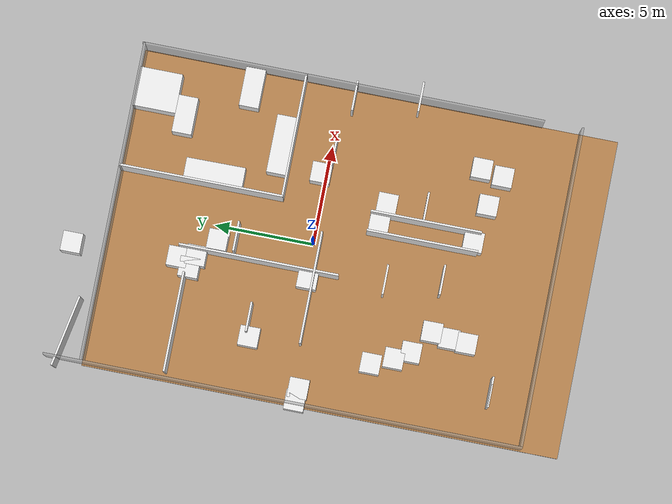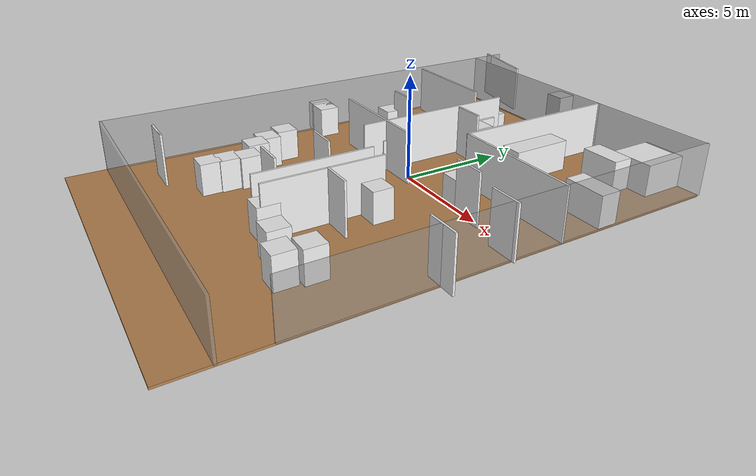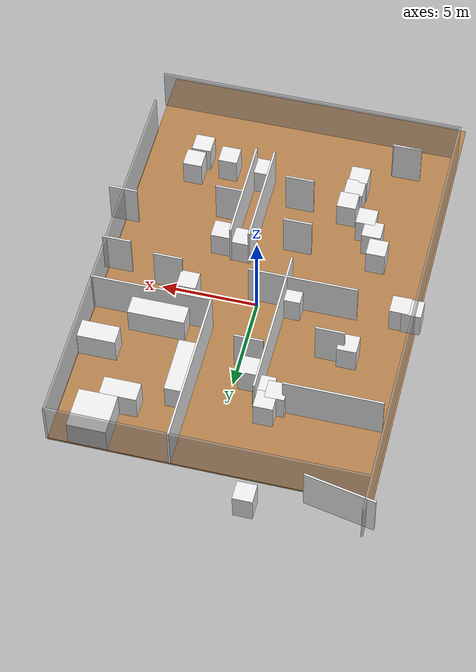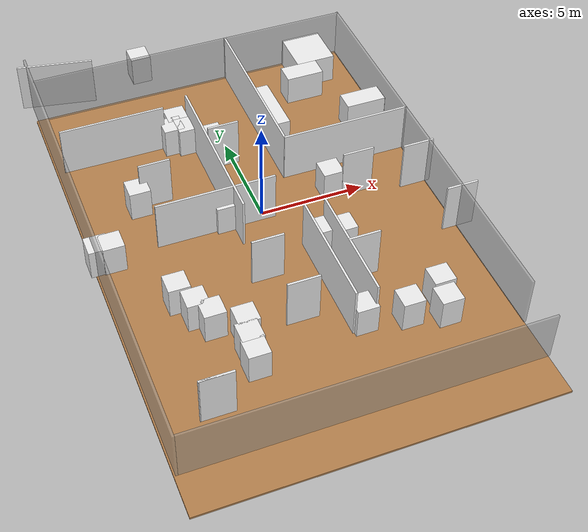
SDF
<sdf version="1.7">
 <world name="default">
  <light name="sun" type="directional">
   <pose>0 0 10 0 -0 0</pose>
   <diffuse>0.8 0.8 0.8 1</diffuse>
   <specular>0.2 0.2 0.2 1</specular>
   <attenuation>
    <range>1000</range>
    <constant>0.9</constant>
    <linear>0.01</linear>
    <quadratic>0.001</quadratic>
   </attenuation>
   <direction>-0.5 0.1 -0.9</direction>
   <spot><inner_angle>0</inner_angle><outer_angle>0</outer_angle><falloff>0</falloff></spot>
  </light>
  <physics name="default_physics" default="0" type="ode">
   <real_time_update_rate>1000</real_time_update_rate>
   <max_step_size>0.001</max_step_size>
   <real_time_factor>1</real_time_factor>
   <ode>
    <solver>
     <type>quick</type>
     <iters>150</iters>
     <precon_iters>0</precon_iters>
     <sor>1.4</sor>
     <use_dynamic_moi_rescaling>1</use_dynamic_moi_rescaling>
    </solver>
    <constraints>
     <cfm>1e-05</cfm>
     <erp>0.2</erp>
     <contact_max_correcting_vel>2000</contact_max_correcting_vel>
     <contact_surface_layer>0.01</contact_surface_layer>
    </constraints>
   </ode>
  </physics>
  <model name="box_1">
   <pose>0.05 -12.05 1.25 0 -0 0</pose>
   <static>1</static>
   <link name="link">
    <collision name="collision"><geometry><box><size>16.1 0.1 2.5</size></box></geometry></collision>
    <visual name="visual">
     <geometry><box><size>16.1 0.1 2.5</size></box></geometry>
     <material>
      <script><name>Gazebo/GreyTransparent</name><uri>file://media/materials/scripts/gazebo.material</uri></script>
     </material>
    </visual>
   </link>
  </model>
  <model name="box_2">
   <pose>8.05 0.05 1.25 0 -0 0</pose>
   <static>1</static>
   <link name="link">
    <collision name="collision"><geometry><box><size>0.1 20.3408 2.5</size></box></geometry></collision>
    <visual name="visual">
     <geometry><box><size>0.1 20.3408 2.5</size></box></geometry>
     <material>
      <script><name>Gazebo/GreyTransparent</name><uri>file://media/materials/scripts/gazebo.material</uri></script>
     </material>
    </visual>
   </link>
  </model>
  <model name="box_3">
   <pose>0.01623 10.1284 1.25 0 -0 0</pose>
   <static>1</static>
   <link name="link">
    <collision name="collision"><geometry><box><size>16.1 0.1 2.5</size></box></geometry></collision>
    <visual name="visual">
     <geometry><box><size>16.1 0.1 2.5</size></box></geometry>
     <material>
      <script><name>Gazebo/GreyTransparent</name><uri>file://media/materials/scripts/gazebo.material</uri></script>
     </material>
    </visual>
   </link>
  </model>
  <model name="box_4">
   <pose>-8.05 -0.05 1.25 0 -0 0</pose>
   <static>1</static>
   <link name="link">
    <collision name="collision"><geometry><box><size>0.1 24.1 2.5</size></box></geometry></collision>
    <visual name="visual">
     <geometry><box><size>0.1 24.1 2.5</size></box></geometry>
     <material>
      <script><name>Gazebo/GreyTransparent</name><uri>file://media/materials/scripts/gazebo.material</uri></script>
     </material>
    </visual>
   </link>
  </model>
  <model name="box_5">
   <pose>-0.073535 -1.90385 -0.05 0 -0 0</pose>
   <static>1</static>
   <link name="link">
    <collision name="collision"><geometry><box><size>16.2 24.2 0.1</size></box></geometry></collision>
    <visual name="visual">
     <geometry><box><size>16.2 24.2 0.1</size></box></geometry>
     <material>
      <script><name>Gazebo/WoodFloor</name><uri>file://media/materials/scripts/gazebo.material</uri></script>
     </material>
    </visual>
   </link>
  </model>
  <gravity>0 0 -9.8066</gravity>
  <magnetic_field>6e-06 2.3e-05 -4.2e-05</magnetic_field>
  <atmosphere type="adiabatic"/>
  <scene><ambient>0.4 0.4 0.4 1</ambient><background>0.7 0.7 0.7 1</background><shadows>1</shadows></scene>
  <spherical_coordinates>
   <surface_model>EARTH_WGS84</surface_model>
   <latitude_deg>0</latitude_deg>
   <longitude_deg>0</longitude_deg>
   <elevation>0</elevation>
   <heading_deg>0</heading_deg>
  </spherical_coordinates>
  <model name="box_8_clone">
   <pose>7.48667 -0.628309 1.25 0 -0 0</pose>
   <static>1</static>
   <link name="link">
    <collision name="collision"><geometry><box><size>1.5 0.1 2.5</size></box></geometry></collision>
    <visual name="visual">
     <geometry><box><size>1.5 0.1 2.5</size></box></geometry>
     <material>
      <script><name>Gazebo/White</name><uri>file://media/materials/scripts/gazebo.material</uri></script>
     </material>
    </visual>
   </link>
  </model>
  <model name="box_9_clone_clone_0">
   <pose>-3.46298 -8.44795 0.75 0 -0 0</pose>
   <static>1</static>
   <link name="link">
    <collision name="collision"><geometry><box><size>1 1 1.5</size></box></geometry></collision>
    <visual name="visual">
     <geometry><box><size>1 1 1.5</size></box></geometry>
     <material>
      <script><name>Gazebo/White</name><uri>file://media/materials/scripts/gazebo.material</uri></script>
     </material>
    </visual>
   </link>
  </model>
  <model name="box_9_clone_clone_1">
   <pose>-3.40186 -7.56359 0.75 0 -0 0</pose>
   <static>1</static>
   <link name="link">
    <collision name="collision"><geometry><box><size>1 1 1.5</size></box></geometry></collision>
    <visual name="visual">
     <geometry><box><size>1 1 1.5</size></box></geometry>
     <material>
      <script><name>Gazebo/White</name><uri>file://media/materials/scripts/gazebo.material</uri></script>
     </material>
    </visual>
   </link>
  </model>
  <model name="box_9_clone_clone_2">
   <pose>-3.23885 -6.64819 0.75 0 -0 0</pose>
   <static>1</static>
   <link name="link">
    <collision name="collision"><geometry><box><size>1 1 1.5</size></box></geometry></collision>
    <visual name="visual">
     <geometry><box><size>1 1 1.5</size></box></geometry>
     <material>
      <script><name>Gazebo/White</name><uri>file://media/materials/scripts/gazebo.material</uri></script>
     </material>
    </visual>
   </link>
  </model>
  <model name="box_9_clone_clone_3">
   <pose>5.04068 -8.64867 0.75 0 -0 0</pose>
   <static>1</static>
   <link name="link">
    <collision name="collision"><geometry><box><size>1 1 1.5</size></box></geometry></collision>
    <visual name="visual">
     <geometry><box><size>1 1 1.5</size></box></geometry>
     <material>
      <script><name>Gazebo/White</name><uri>file://media/materials/scripts/gazebo.material</uri></script>
     </material>
    </visual>
   </link>
  </model>
  <model name="box_9_clone_clone_4">
   <pose>5.24363 -7.53941 0.75 0 -0 0</pose>
   <static>1</static>
   <link name="link">
    <collision name="collision"><geometry><box><size>1 1 1.5</size></box></geometry></collision>
    <visual name="visual">
     <geometry><box><size>1 1 1.5</size></box></geometry>
     <material>
      <script><name>Gazebo/White</name><uri>file://media/materials/scripts/gazebo.material</uri></script>
     </material>
    </visual>
   </link>
  </model>
  <model name="box_9_clone_clone_7">
   <pose>-2.40815 5.82285 0.75 0 -0 0</pose>
   <static>1</static>
   <link name="link">
    <collision name="collision"><geometry><box><size>1 1 1.5</size></box></geometry></collision>
    <visual name="visual">
     <geometry><box><size>1 1 1.5</size></box></geometry>
     <material>
      <script><name>Gazebo/White</name><uri>file://media/materials/scripts/gazebo.material</uri></script>
     </material>
    </visual>
   </link>
  </model>
  <model name="box_9_clone_clone_8">
   <pose>-2 6.49358 0.75 0 -0 0</pose>
   <static>1</static>
   <link name="link">
    <collision name="collision"><geometry><box><size>1 0.999999 1.5</size></box></geometry></collision>
    <visual name="visual">
     <geometry><box><size>1 0.999999 1.5</size></box></geometry>
     <material>
      <script><name>Gazebo/White</name><uri>file://media/materials/scripts/gazebo.material</uri></script>
     </material>
    </visual>
   </link>
  </model>
  <model name="box_8_clone_clone_13_clone_clone_clone_clone_0">
   <pose>8.06241 -3.86612 1.25 0 -0 0</pose>
   <static>1</static>
   <link name="link">
    <collision name="collision"><geometry><box><size>1.5 0.1 2.5</size></box></geometry></collision>
    <visual name="visual">
     <geometry><box><size>1.5 0.1 2.5</size></box></geometry>
     <material>
      <script><name>Gazebo/White</name><uri>file://media/materials/scripts/gazebo.material</uri></script>
     </material>
    </visual>
   </link>
  </model>
  <model name="box_8_clone_clone_11_clone">
   <pose>-1.1954 -3.87817 1.25 0 -0 0</pose>
   <static>1</static>
   <link name="link">
    <collision name="collision"><geometry><box><size>1.5 0.1 2.5</size></box></geometry></collision>
    <visual name="visual">
     <geometry><box><size>1.5 0.1 2.5</size></box></geometry>
     <material>
      <script><name>Gazebo/White</name><uri>file://media/materials/scripts/gazebo.material</uri></script>
     </material>
    </visual>
   </link>
  </model>
  <model name="box_8_clone_clone_4_clone_2">
   <pose>-4.30694 2.39293 1.25 0 -0 0</pose>
   <static>1</static>
   <link name="link">
    <collision name="collision"><geometry><box><size>1.5 0.1 2.5</size></box></geometry></collision>
    <visual name="visual">
     <geometry><box><size>1.5 0.1 2.5</size></box></geometry>
     <material>
      <script><name>Gazebo/White</name><uri>file://media/materials/scripts/gazebo.material</uri></script>
     </material>
    </visual>
   </link>
  </model>
  <model name="box_9_clone_clone_7_clone">
   <pose>-5.21616 2.23106 0.75 0 -0 0</pose>
   <static>1</static>
   <link name="link">
    <collision name="collision"><geometry><box><size>1 1 1.5</size></box></geometry></collision>
    <visual name="visual">
     <geometry><box><size>1 1 1.5</size></box></geometry>
     <material>
      <script><name>Gazebo/White</name><uri>file://media/materials/scripts/gazebo.material</uri></script>
     </material>
    </visual>
   </link>
  </model>
  <model name="box_9_clone_clone_7_clone_clone">
   <pose>-7.89766 -0.627489 0.75 0 -0 0</pose>
   <static>1</static>
   <link name="link">
    <collision name="collision"><geometry><box><size>1 1 1.5</size></box></geometry></collision>
    <visual name="visual">
     <geometry><box><size>1 1 1.5</size></box></geometry>
     <material>
      <script><name>Gazebo/White</name><uri>file://media/materials/scripts/gazebo.material</uri></script>
     </material>
    </visual>
   </link>
  </model>
  <model name="box_9_clone_clone_7_clone_clone_3">
   <pose>-5.3619 -3.95424 0.75 0 -0 0</pose>
   <static>1</static>
   <link name="link">
    <collision name="collision"><geometry><box><size>1 0.999999 1.5</size></box></geometry></collision>
    <visual name="visual">
     <geometry><box><size>1 0.999999 1.5</size></box></geometry>
     <material>
      <script><name>Gazebo/White</name><uri>file://media/materials/scripts/gazebo.material</uri></script>
     </material>
    </visual>
   </link>
  </model>
  <model name="box_9_clone_clone_7_clone_clone_4">
   <pose>-4.89443 -5.04481 0.75 0 -0 0</pose>
   <static>1</static>
   <link name="link">
    <collision name="collision"><geometry><box><size>1 1 1.5</size></box></geometry></collision>
    <visual name="visual">
     <geometry><box><size>1 1 1.5</size></box></geometry>
     <material>
      <script><name>Gazebo/White</name><uri>file://media/materials/scripts/gazebo.material</uri></script>
     </material>
    </visual>
   </link>
  </model>
  <model name="box_9_clone_clone_7_clone_clone_5">
   <pose>-4.42171 -5.82067 0.75 0 -0 0</pose>
   <static>1</static>
   <link name="link">
    <collision name="collision"><geometry><box><size>1 1 1.5</size></box></geometry></collision>
    <visual name="visual">
     <geometry><box><size>1 1 1.5</size></box></geometry>
     <material>
      <script><name>Gazebo/White</name><uri>file://media/materials/scripts/gazebo.material</uri></script>
     </material>
    </visual>
   </link>
  </model>
  <model name="box_9_clone_clone_5_clone_2_clone_0">
   <pose>5.99238 9.0872 0.75 0 -0 0</pose>
   <static>1</static>
   <link name="link">
    <collision name="collision"><geometry><box><size>1.98299 2.16359 1.5</size></box></geometry></collision>
    <visual name="visual">
     <geometry><box><size>1.98299 2.16359 1.5</size></box></geometry>
     <material>
      <script><name>Gazebo/White</name><uri>file://media/materials/scripts/gazebo.material</uri></script>
     </material>
    </visual>
   </link>
  </model>
  <model name="box_9_clone_clone_5_clone_2_clone_0_clone_0">
   <pose>3.49636 -8.18539 0.75 0 -0 0</pose>
   <static>1</static>
   <link name="link">
    <collision name="collision"><geometry><box><size>1 1 1.5</size></box></geometry></collision>
    <visual name="visual">
     <geometry><box><size>1 1 1.5</size></box></geometry>
     <material>
      <script><name>Gazebo/White</name><uri>file://media/materials/scripts/gazebo.material</uri></script>
     </material>
    </visual>
   </link>
  </model>
  <model name="box_9_clone_clone_7_clone_clone_clone">
   <pose>-7.27075 -0.673379 0.75 0 -0 0</pose>
   <static>1</static>
   <link name="link">
    <collision name="collision"><geometry><box><size>1 1 1.5</size></box></geometry></collision>
    <visual name="visual">
     <geometry><box><size>1 1 1.5</size></box></geometry>
     <material>
      <script><name>Gazebo/White</name><uri>file://media/materials/scripts/gazebo.material</uri></script>
     </material>
    </visual>
   </link>
  </model>
  <model name="box_9_clone_clone_7_clone_0">
   <pose>7.01794 4.4793 0.75 0 -0 0</pose>
   <static>1</static>
   <link name="link">
    <collision name="collision"><geometry><box><size>1.98047 1 1.5</size></box></geometry></collision>
    <visual name="visual">
     <geometry><box><size>1.98047 1 1.5</size></box></geometry>
     <material>
      <script><name>Gazebo/White</name><uri>file://media/materials/scripts/gazebo.material</uri></script>
     </material>
    </visual>
   </link>
  </model>
  <model name="box_8_clone_clone_3_clone_clone">
   <pose>-5.25901 5.98168 1.25 0 -0 0</pose>
   <static>1</static>
   <link name="link">
    <collision name="collision"><geometry><box><size>5.04273 0.1 2.5</size></box></geometry></collision>
    <visual name="visual">
     <geometry><box><size>5.04273 0.1 2.5</size></box></geometry>
     <material>
      <script><name>Gazebo/White</name><uri>file://media/materials/scripts/gazebo.material</uri></script>
     </material>
    </visual>
   </link>
  </model>
  <model name="box_9_clone_clone_9_clone">
   <pose>-2.30467 11.7929 0.75 0 -0 0</pose>
   <static>1</static>
   <link name="link">
    <collision name="collision"><geometry><box><size>1 1 1.5</size></box></geometry></collision>
    <visual name="visual">
     <geometry><box><size>1 1 1.5</size></box></geometry>
     <material>
      <script><name>Gazebo/White</name><uri>file://media/materials/scripts/gazebo.material</uri></script>
     </material>
    </visual>
   </link>
  </model>
  <model name="box_9_clone_clone_7_clone_1">
   <pose>-1.75575 5.59579 0.75 0 -0 0</pose>
   <static>1</static>
   <link name="link">
    <collision name="collision"><geometry><box><size>1 1 1.5</size></box></geometry></collision>
    <visual name="visual">
     <geometry><box><size>1 1 1.5</size></box></geometry>
     <material>
      <script><name>Gazebo/White</name><uri>file://media/materials/scripts/gazebo.material</uri></script>
     </material>
    </visual>
   </link>
  </model>
  <model name="box_6_clone_clone_3_clone_clone_clone">
   <pose>-1.43846 2.46186 1.25 0 -0 0</pose>
   <static>1</static>
   <link name="link">
    <collision name="collision"><geometry><box><size>0.1 8.05948 2.5</size></box></geometry></collision>
    <visual name="visual">
     <geometry><box><size>0.1 8.05948 2.5</size></box></geometry>
     <material>
      <script><name>Gazebo/White</name><uri>file://media/materials/scripts/gazebo.material</uri></script>
     </material>
    </visual>
   </link>
  </model>
  <model name="box_6_clone_clone_3_clone_clone_clone_clone_0">
   <pose>2.0182 -5.31678 1.25 0 -0 0</pose>
   <static>1</static>
   <link name="link">
    <collision name="collision"><geometry><box><size>0.1 5.60332 2.5</size></box></geometry></collision>
    <visual name="visual">
     <geometry><box><size>0.1 5.60332 2.5</size></box></geometry>
     <material>
      <script><name>Gazebo/White</name><uri>file://media/materials/scripts/gazebo.material</uri></script>
     </material>
    </visual>
   </link>
  </model>
  <model name="box_6_clone_clone_3_clone_clone_clone_clone_0_clone">
   <pose>1.04356 -5.29976 1.25 0 -0 0</pose>
   <static>1</static>
   <link name="link">
    <collision name="collision"><geometry><box><size>0.1 5.60332 2.5</size></box></geometry></collision>
    <visual name="visual">
     <geometry><box><size>0.1 5.60332 2.5</size></box></geometry>
     <material>
      <script><name>Gazebo/White</name><uri>file://media/materials/scripts/gazebo.material</uri></script>
     </material>
    </visual>
   </link>
  </model>
  <model name="box_9_clone_clone_5_clone_2_clone_0_clone_clone">
   <pose>1.51029 -3.03655 0.75 0 -0 0</pose>
   <static>1</static>
   <link name="link">
    <collision name="collision"><geometry><box><size>1 1 1.5</size></box></geometry></collision>
    <visual name="visual">
     <geometry><box><size>1 1 1.5</size></box></geometry>
     <material>
      <script><name>Gazebo/White</name><uri>file://media/materials/scripts/gazebo.material</uri></script>
     </material>
    </visual>
   </link>
  </model>
  <model name="box_8_clone_clone">
   <pose>4.67136 -0.169302 1.25 0 -0 0</pose>
   <static>1</static>
   <link name="link">
    <collision name="collision"><geometry><box><size>1.5 0.1 2.5</size></box></geometry></collision>
    <visual name="visual">
     <geometry><box><size>1.5 0.1 2.5</size></box></geometry>
     <material>
      <script><name>Gazebo/White</name><uri>file://media/materials/scripts/gazebo.material</uri></script>
     </material>
    </visual>
   </link>
  </model>
  <model name="box_9_clone_clone_7_clone_clone_0">
   <pose>-1.82358 -0.068042 0.75 0 -0 0</pose>
   <static>1</static>
   <link name="link">
    <collision name="collision"><geometry><box><size>1 1 1.5</size></box></geometry></collision>
    <visual name="visual">
     <geometry><box><size>1 1 1.5</size></box></geometry>
     <material>
      <script><name>Gazebo/White</name><uri>file://media/materials/scripts/gazebo.material</uri></script>
     </material>
    </visual>
   </link>
  </model>
  <model name="box_9_clone_clone_5_clone_2_clone_0_clone_0_clone">
   <pose>1.56966 -7.808 0.75 0 -0 0</pose>
   <static>1</static>
   <link name="link">
    <collision name="collision"><geometry><box><size>1 1 1.5</size></box></geometry></collision>
    <visual name="visual">
     <geometry><box><size>1 1 1.5</size></box></geometry>
     <material>
      <script><name>Gazebo/White</name><uri>file://media/materials/scripts/gazebo.material</uri></script>
     </material>
    </visual>
   </link>
  </model>
  <model name="box_9_clone_clone_5_clone_2_clone_clone_clone_0_clone">
   <pose>4.48393 2.48953 0.75 0 -0 0</pose>
   <static>1</static>
   <link name="link">
    <collision name="collision"><geometry><box><size>2.94093 1 1.5</size></box></geometry></collision>
    <visual name="visual">
     <geometry><box><size>2.94093 1 1.5</size></box></geometry>
     <material>
      <script><name>Gazebo/White</name><uri>file://media/materials/scripts/gazebo.material</uri></script>
     </material>
    </visual>
   </link>
  </model>
  <model name="box_9_clone_clone_5_clone_2_clone_clone_clone_0_clone_clone">
   <pose>3.50283 0.292409 0.75 0 -0 0</pose>
   <static>1</static>
   <link name="link">
    <collision name="collision"><geometry><box><size>1 1 1.5</size></box></geometry></collision>
    <visual name="visual">
     <geometry><box><size>1 1 1.5</size></box></geometry>
     <material>
      <script><name>Gazebo/White</name><uri>file://media/materials/scripts/gazebo.material</uri></script>
     </material>
    </visual>
   </link>
  </model>
  <model name="box_6_clone_clone_3_clone_clone_clone_clone_1">
   <pose>1.87041 6.04031 1.25 0 -0 0.001144</pose>
   <static>1</static>
   <link name="link">
    <collision name="collision"><geometry><box><size>0.1 8.29947 2.5</size></box></geometry></collision>
    <visual name="visual">
     <geometry><box><size>0.1 8.29947 2.5</size></box></geometry>
     <material>
      <script><name>Gazebo/White</name><uri>file://media/materials/scripts/gazebo.material</uri></script>
     </material>
    </visual>
   </link>
  </model>
  <model name="box_9_clone_clone_8_clone_0_clone">
   <pose>-0.786916 4.69142 0.75 0 -0 0</pose>
   <static>1</static>
   <link name="link">
    <collision name="collision"><geometry><box><size>1 1 1.5</size></box></geometry></collision>
    <visual name="visual">
     <geometry><box><size>1 1 1.5</size></box></geometry>
     <material>
      <script><name>Gazebo/White</name><uri>file://media/materials/scripts/gazebo.material</uri></script>
     </material>
    </visual>
   </link>
  </model>
  <model name="box_8_clone_clone_3_clone_clone_clone">
   <pose>-2.2916 -0.339317 1.25 0 -0 0</pose>
   <static>1</static>
   <link name="link">
    <collision name="collision"><geometry><box><size>5.64961 0.1 2.5</size></box></geometry></collision>
    <visual name="visual">
     <geometry><box><size>5.64961 0.1 2.5</size></box></geometry>
     <material>
      <script><name>Gazebo/White</name><uri>file://media/materials/scripts/gazebo.material</uri></script>
     </material>
    </visual>
   </link>
  </model>
  <audio><device>default</device></audio>
  <model name="box_9_clone_clone_5_clone_2_clone_0_clone_0_clone_0">
   <pose>2.62497 -3.23808 0.75 0 -0 0</pose>
   <static>1</static>
   <link name="link">
    <collision name="collision"><geometry><box><size>1 1 1.5</size></box></geometry></collision>
    <visual name="visual">
     <geometry><box><size>1 1 1.5</size></box></geometry>
     <material>
      <script><name>Gazebo/White</name><uri>file://media/materials/scripts/gazebo.material</uri></script>
     </material>
    </visual>
   </link>
  </model>
  <model name="box_8_clone_clone_11_clone_clone">
   <pose>2.72179 -5.17165 1.25 0 -0 0</pose>
   <static>1</static>
   <link name="link">
    <collision name="collision"><geometry><box><size>1.5 0.1 2.5</size></box></geometry></collision>
    <visual name="visual">
     <geometry><box><size>1.5 0.1 2.5</size></box></geometry>
     <material>
      <script><name>Gazebo/White</name><uri>file://media/materials/scripts/gazebo.material</uri></script>
     </material>
    </visual>
   </link>
  </model>
  <model name="box_8_clone_clone_11_clone_clone_0">
   <pose>-5.67141 -10.0374 1.25 0 -0 0</pose>
   <static>1</static>
   <link name="link">
    <collision name="collision"><geometry><box><size>1.5 0.1 2.5</size></box></geometry></collision>
    <visual name="visual">
     <geometry><box><size>1.5 0.1 2.5</size></box></geometry>
     <material>
      <script><name>Gazebo/White</name><uri>file://media/materials/scripts/gazebo.material</uri></script>
     </material>
    </visual>
   </link>
  </model>
  <model name="box_8_clone_clone_11_clone_clone_1">
   <pose>-5.63429 -10.0383 1.25 0 -0 0</pose>
   <static>1</static>
   <link name="link">
    <collision name="collision"><geometry><box><size>1.5 0.1 2.5</size></box></geometry></collision>
    <visual name="visual">
     <geometry><box><size>1.5 0.1 2.5</size></box></geometry>
     <material>
      <script><name>Gazebo/White</name><uri>file://media/materials/scripts/gazebo.material</uri></script>
     </material>
    </visual>
   </link>
  </model>
  <model name="box_8_clone_clone_11_clone_clone_1_clone">
   <pose>-0.668626 -6.64947 1.25 0 -0 0</pose>
   <static>1</static>
   <link name="link">
    <collision name="collision"><geometry><box><size>1.5 0.1 2.5</size></box></geometry></collision>
    <visual name="visual">
     <geometry><box><size>1.5 0.1 2.5</size></box></geometry>
     <material>
      <script><name>Gazebo/White</name><uri>file://media/materials/scripts/gazebo.material</uri></script>
     </material>
    </visual>
   </link>
  </model>
  <model name="box_8_clone_clone_0">
   <pose>-6.74142 11.1297 1.25 0 0 -0.191358</pose>
   <static>1</static>
   <link name="link">
    <collision name="collision"><geometry><box><size>3.67088 0.1 2.5</size></box></geometry></collision>
    <visual name="visual">
     <geometry><box><size>3.67088 0.1 2.5</size></box></geometry>
     <material>
      <script><name>Gazebo/White</name><uri>file://media/materials/scripts/gazebo.material</uri></script>
     </material>
    </visual>
   </link>
  </model>
  <model name="box_8_clone_clone_4_clone_2_clone">
   <pose>-0.506698 3.78615 1.25 0 -0 0</pose>
   <static>1</static>
   <link name="link">
    <collision name="collision"><geometry><box><size>1.5 0.1 2.5</size></box></geometry></collision>
    <visual name="visual">
     <geometry><box><size>1.5 0.1 2.5</size></box></geometry>
     <material>
      <script><name>Gazebo/White</name><uri>file://media/materials/scripts/gazebo.material</uri></script>
     </material>
    </visual>
   </link>
  </model>
  <model name="box_8_clone_clone_4_clone_2_clone_clone">
   <pose>4.96837 1.93468 1.25 0 -0 0</pose>
   <static>1</static>
   <link name="link">
    <collision name="collision"><geometry><box><size>6.22515 0.1 2.5</size></box></geometry></collision>
    <visual name="visual">
     <geometry><box><size>6.22515 0.1 2.5</size></box></geometry>
     <material>
      <script><name>Gazebo/White</name><uri>file://media/materials/scripts/gazebo.material</uri></script>
     </material>
    </visual>
   </link>
  </model>
  <model name="box_9_clone_clone_5_clone_2_clone_0_clone">
   <pose>5.02599 7.51254 0.75 0 -0 0</pose>
   <static>1</static>
   <link name="link">
    <collision name="collision"><geometry><box><size>1.88149 1 1.5</size></box></geometry></collision>
    <visual name="visual">
     <geometry><box><size>1.88149 1 1.5</size></box></geometry>
     <material>
      <script><name>Gazebo/White</name><uri>file://media/materials/scripts/gazebo.material</uri></script>
     </material>
    </visual>
   </link>
  </model>
  <model name="box_9_clone_clone_5_clone_2_clone_0_clone_clone_0">
   <pose>2.43978 5.50697 0.75 0 0 -1.56154</pose>
   <static>1</static>
   <link name="link">
    <collision name="collision"><geometry><box><size>2.99215 1.07482 1.5</size></box></geometry></collision>
    <visual name="visual">
     <geometry><box><size>2.99215 1.07482 1.5</size></box></geometry>
     <material>
      <script><name>Gazebo/White</name><uri>file://media/materials/scripts/gazebo.material</uri></script>
     </material>
    </visual>
   </link>
  </model>
 </world>
</sdf>
